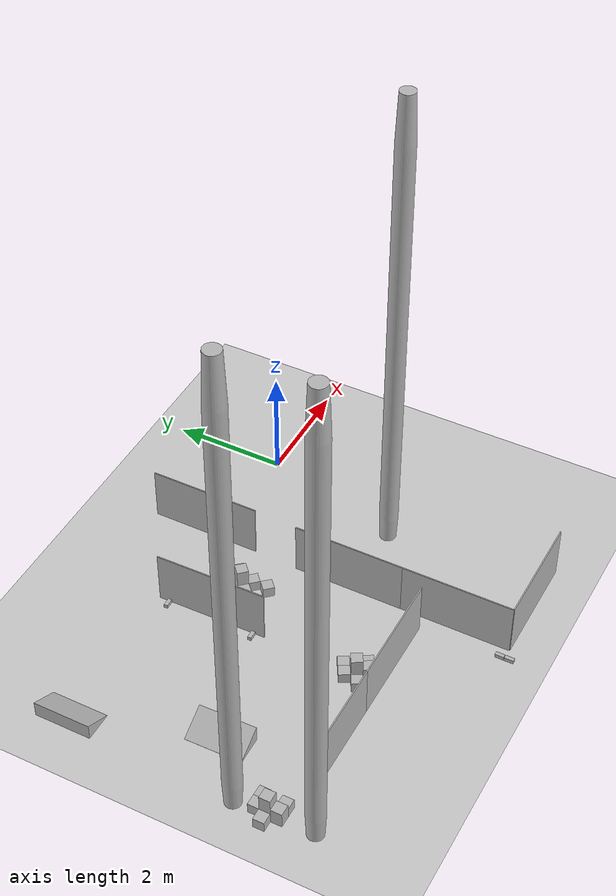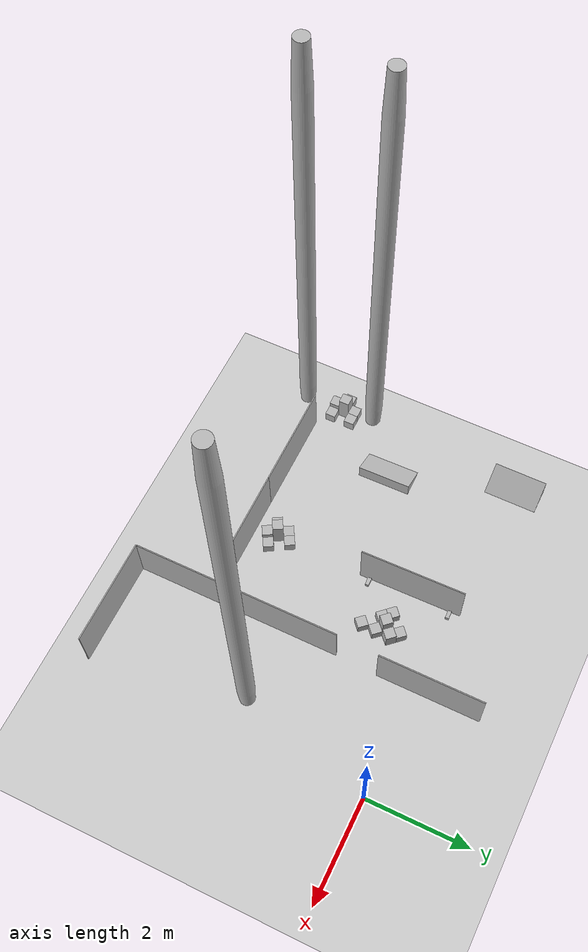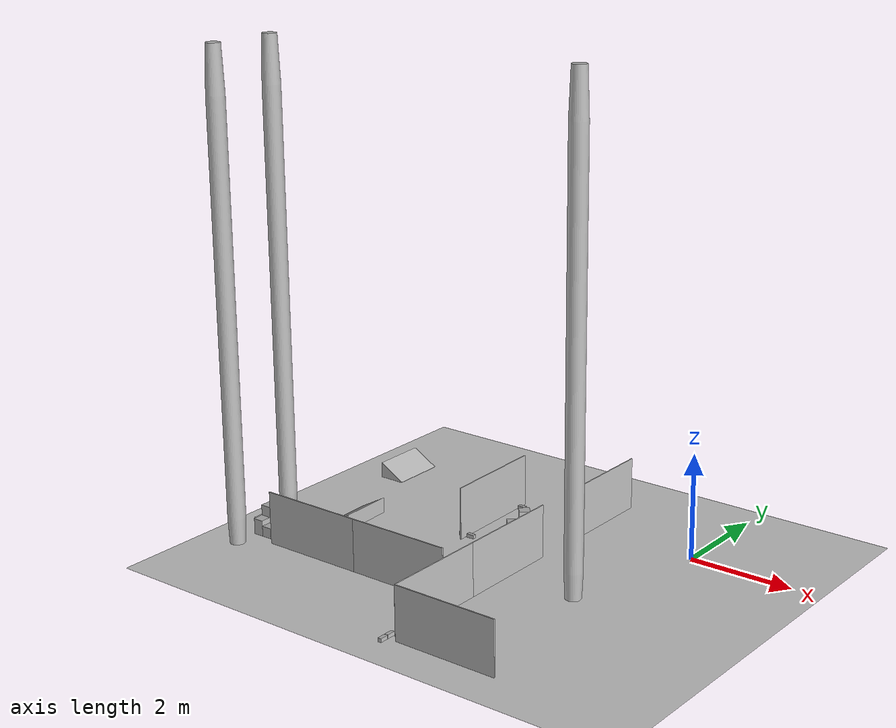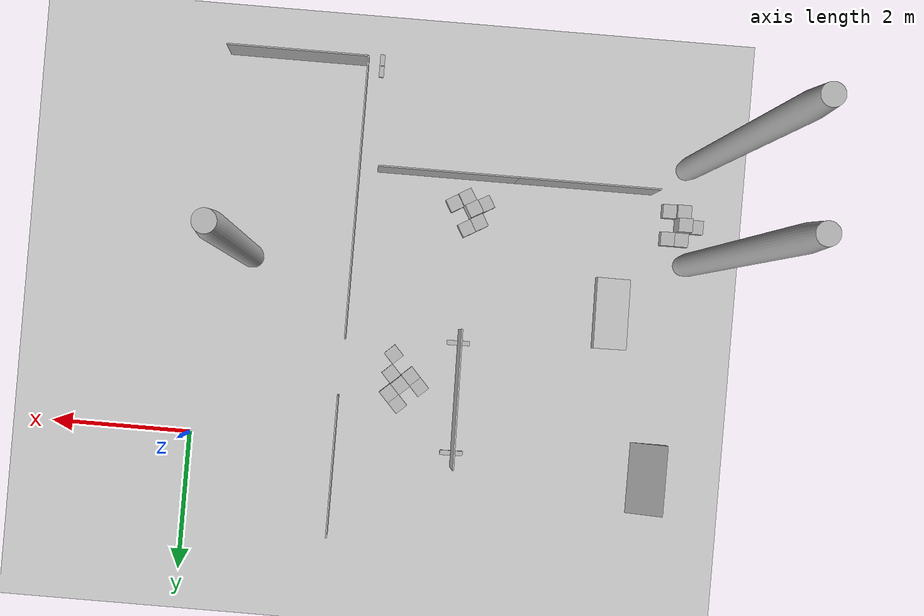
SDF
<sdf version="1.4">
 <world name="default">
  <include><uri>model://ground_plane</uri></include>
  <include><uri>model://sun</uri></include>
  <include><uri>model://ground_plane</uri></include>
  <include>
   <name>barrel_110l.064</name>
   <pose>-6.941155910491943 -2.995645046234131 0.0  0.0 0.0 0.0</pose>
   <uri>model://barrel_110l</uri>
  </include>
  <include>
   <name>barrel_110l.068</name>
   <pose>-6.876338481903076 -4.385210990905762 0.0  0.0 0.0 0.0</pose>
   <uri>model://barrel_110l</uri>
  </include>
  <include>
   <name>barrel_110l.071</name>
   <pose>-0.7261247634887695 -2.6033458709716797 0.0  0.0 0.0 0.0</pose>
   <uri>model://barrel_110l</uri>
  </include>
  <include>
   <name>cube_20x20.1085</name>
   <pose>-6.874878406524658 -3.3630831241607666 0.10000000149011612  0.0 -0.0 3.141592502593994</pose>
   <uri>model://cube_20x20</uri>
  </include>
  <include>
   <name>cube_20x20.1086</name>
   <pose>-7.074878215789795 -3.5630829334259033 0.10000000149011612  0.0 -0.0 3.141592502593994</pose>
   <uri>model://cube_20x20</uri>
  </include>
  <include>
   <name>cube_20x20.1087</name>
   <pose>-6.674878120422363 -3.3630831241607666 0.10000000149011612  0.0 -0.0 3.141592502593994</pose>
   <uri>model://cube_20x20</uri>
  </include>
  <include>
   <name>cube_20x20.1088</name>
   <pose>-6.674878120422363 -3.76308274269104 0.10000000149011612  0.0 -0.0 3.141592502593994</pose>
   <uri>model://cube_20x20</uri>
  </include>
  <include>
   <name>cube_20x20.1089</name>
   <pose>-6.874878406524658 -3.3630831241607666 0.10000000149011612  0.0 -0.0 3.141592502593994</pose>
   <uri>model://cube_20x20</uri>
  </include>
  <include>
   <name>cube_20x20.1090</name>
   <pose>-7.074878215789795 -3.5630829334259033 0.10000000149011612  0.0 -0.0 3.141592502593994</pose>
   <uri>model://cube_20x20</uri>
  </include>
  <include>
   <name>cube_20x20.1091</name>
   <pose>-6.674878120422363 -3.3630831241607666 0.10000000149011612  0.0 -0.0 3.141592502593994</pose>
   <uri>model://cube_20x20</uri>
  </include>
  <include>
   <name>cube_20x20.1092</name>
   <pose>-6.674878120422363 -3.76308274269104 0.10000000149011612  0.0 -0.0 3.141592502593994</pose>
   <uri>model://cube_20x20</uri>
  </include>
  <include>
   <name>cube_20x20.1093</name>
   <pose>-3.9385533332824707 -3.3717634677886963 0.10000000149011612  0.0 -0.0 3.6651763916015625</pose>
   <uri>model://cube_20x20</uri>
  </include>
  <include>
   <name>cube_20x20.1094</name>
   <pose>-4.011762619018555 -3.6449673175811768 0.10000000149011612  0.0 -0.0 3.6651763916015625</pose>
   <uri>model://cube_20x20</uri>
  </include>
  <include>
   <name>cube_20x20.1095</name>
   <pose>-3.7653465270996094 -3.271765947341919 0.10000000149011612  0.0 -0.0 3.6651763916015625</pose>
   <uri>model://cube_20x20</uri>
  </include>
  <include>
   <name>cube_20x20.1096</name>
   <pose>-3.565351963043213 -3.6181790828704834 0.10000000149011612  0.0 -0.0 3.6651763916015625</pose>
   <uri>model://cube_20x20</uri>
  </include>
  <include>
   <name>cube_20x20.1097</name>
   <pose>-3.9385533332824707 -3.3717634677886963 0.10000000149011612  0.0 -0.0 3.6651763916015625</pose>
   <uri>model://cube_20x20</uri>
  </include>
  <include>
   <name>cube_20x20.1098</name>
   <pose>-4.011762619018555 -3.6449673175811768 0.10000000149011612  0.0 -0.0 3.6651763916015625</pose>
   <uri>model://cube_20x20</uri>
  </include>
  <include>
   <name>cube_20x20.1099</name>
   <pose>-3.7653465270996094 -3.271765947341919 0.10000000149011612  0.0 -0.0 3.6651763916015625</pose>
   <uri>model://cube_20x20</uri>
  </include>
  <include>
   <name>cube_20x20.1100</name>
   <pose>-3.565351963043213 -3.6181790828704834 0.10000000149011612  0.0 -0.0 3.6651763916015625</pose>
   <uri>model://cube_20x20</uri>
  </include>
  <include>
   <name>cube_20x20.1101</name>
   <pose>-3.1368727684020996 -1.071094274520874 0.10000000149011612  0.0 0.0 5.4528021812438965</pose>
   <uri>model://cube_20x20</uri>
  </include>
  <include>
   <name>cube_20x20.1102</name>
   <pose>-2.8543167114257812 -1.0838134288787842 0.10000000149011612  0.0 0.0 5.4528021812438965</pose>
   <uri>model://cube_20x20</uri>
  </include>
  <include>
   <name>cube_20x20.1103</name>
   <pose>-2.8670363426208496 -1.3663697242736816 0.10000000149011612  0.0 0.0 5.4528021812438965</pose>
   <uri>model://cube_20x20</uri>
  </include>
  <include>
   <name>cube_20x20.1104</name>
   <pose>-3.2717912197113037 -0.9234559535980225 0.10000000149011612  0.0 0.0 5.4528021812438965</pose>
   <uri>model://cube_20x20</uri>
  </include>
  <include>
   <name>cube_20x20.1105</name>
   <pose>-2.976515293121338 -0.6536192893981934 0.10000000149011612  0.0 0.0 5.4528021812438965</pose>
   <uri>model://cube_20x20</uri>
  </include>
  <include>
   <name>cube_20x20.1106</name>
   <pose>-3.1368727684020996 -1.071094274520874 0.10000000149011612  0.0 0.0 5.4528021812438965</pose>
   <uri>model://cube_20x20</uri>
  </include>
  <include>
   <name>cube_20x20.1107</name>
   <pose>-2.8543167114257812 -1.0838134288787842 0.10000000149011612  0.0 0.0 5.4528021812438965</pose>
   <uri>model://cube_20x20</uri>
  </include>
  <include>
   <name>cube_20x20.1108</name>
   <pose>-2.8670363426208496 -1.3663697242736816 0.10000000149011612  0.0 0.0 5.4528021812438965</pose>
   <uri>model://cube_20x20</uri>
  </include>
  <include>
   <name>cube_20x20.1109</name>
   <pose>-3.2717912197113037 -0.9234559535980225 0.10000000149011612  0.0 0.0 5.4528021812438965</pose>
   <uri>model://cube_20x20</uri>
  </include>
  <include>
   <name>cube_20x20.1110</name>
   <pose>-2.976515293121338 -0.6536192893981934 0.10000000149011612  0.0 0.0 5.4528021812438965</pose>
   <uri>model://cube_20x20</uri>
  </include>
  <include>
   <name>cube_20x30.186</name>
   <pose>-6.874878406524658 -3.76308274269104 0.15000000596046448  0.0 -0.0 3.141592502593994</pose>
   <uri>model://cube_20x30</uri>
  </include>
  <include>
   <name>cube_20x30.187</name>
   <pose>-6.874878406524658 -3.76308274269104 0.15000000596046448  0.0 -0.0 3.141592502593994</pose>
   <uri>model://cube_20x30</uri>
  </include>
  <include>
   <name>cube_20x30.188</name>
   <pose>-3.738558769226074 -3.7181766033172607 0.15000000596046448  0.0 -0.0 3.6651763916015625</pose>
   <uri>model://cube_20x30</uri>
  </include>
  <include>
   <name>cube_20x30.189</name>
   <pose>-3.738558769226074 -3.7181766033172607 0.15000000596046448  0.0 -0.0 3.6651763916015625</pose>
   <uri>model://cube_20x30</uri>
  </include>
  <include>
   <name>cube_20x30.190</name>
   <pose>-2.841596841812134 -0.8012573719024658 0.15000000596046448  0.0 0.0 5.4528021812438965</pose>
   <uri>model://cube_20x30</uri>
  </include>
  <include>
   <name>cube_20x30.191</name>
   <pose>-2.841596841812134 -0.8012573719024658 0.15000000596046448  0.0 0.0 5.4528021812438965</pose>
   <uri>model://cube_20x30</uri>
  </include>
  <include>
   <name>cube_20x50.180</name>
   <pose>-6.874878406524658 -3.5630829334259033 0.25  0.0 -0.0 3.141592502593994</pose>
   <uri>model://cube_20x50</uri>
  </include>
  <include>
   <name>cube_20x50.181</name>
   <pose>-6.874878406524658 -3.5630829334259033 0.25  0.0 -0.0 3.141592502593994</pose>
   <uri>model://cube_20x50</uri>
  </include>
  <include>
   <name>cube_20x50.182</name>
   <pose>-3.8385560512542725 -3.5449702739715576 0.25  0.0 -0.0 3.6651763916015625</pose>
   <uri>model://cube_20x50</uri>
  </include>
  <include>
   <name>cube_20x50.183</name>
   <pose>-3.8385560512542725 -3.5449702739715576 0.25  0.0 -0.0 3.6651763916015625</pose>
   <uri>model://cube_20x50</uri>
  </include>
  <include>
   <name>cube_20x50.184</name>
   <pose>-2.989234209060669 -0.9361758232116699 0.25  0.0 0.0 5.4528021812438965</pose>
   <uri>model://cube_20x50</uri>
  </include>
  <include>
   <name>cube_20x50.185</name>
   <pose>-2.989234209060669 -0.9361758232116699 0.25  0.0 0.0 5.4528021812438965</pose>
   <uri>model://cube_20x50</uri>
  </include>
  <include>
   <name>ramp.080</name>
   <pose>-5.96612548828125 -2.2167935371398926 0.15000000596046448  0.0 -0.0 9.44315242767334</pose>
   <uri>model://ramp</uri>
  </include>
  <include>
   <name>ramp.081</name>
   <pose>-6.66489315032959 0.13354206085205078 0.15000000596046448  0.0 -0.0 6.283185005187988</pose>
   <uri>model://ramp</uri>
  </include>
  <include>
   <name>wall_2x1.415</name>
   <pose>-3.801290512084961 -0.8092706203460693 0.5130000114440918  0.0 -0.0 4.7307634353637695</pose>
   <uri>model://wall_2x1</uri>
  </include>
  <include>
   <name>wall_2x1.419</name>
   <pose>-2.147331953048706 -2.5302858352661133 0.5130000114440918  0.0 -0.0 1.570796251296997</pose>
   <uri>model://wall_2x1</uri>
  </include>
  <include>
   <name>wall_2x1.420</name>
   <pose>-1.1473321914672852 -5.530285835266113 0.5130000114440918  0.0 -0.0 3.141592502593994</pose>
   <uri>model://wall_2x1</uri>
  </include>
  <include>
   <name>wall_2x1.421</name>
   <pose>-2.147332191467285 -4.530285835266113 0.5130000114440918  0.0 -0.0 1.570796251296997</pose>
   <uri>model://wall_2x1</uri>
  </include>
  <include>
   <name>wall_2x1.426</name>
   <pose>-2.1166141033172607 0.2739219665527344 0.5130000114440918  0.0 -0.0 4.71238899230957</pose>
   <uri>model://wall_2x1</uri>
  </include>
  <include>
   <name>wall_stand.940</name>
   <pose>-3.7865824699401855 -1.609635353088379 0.03450000286102295  0.0 -0.0 3.1599674224853516</pose>
   <uri>model://wall_stand</uri>
  </include>
  <include>
   <name>wall_stand.941</name>
   <pose>-3.815998077392578 -0.008905649185180664 0.03450000286102295  0.0 -0.0 3.1599674224853516</pose>
   <uri>model://wall_stand</uri>
  </include>
  <include>
   <name>wall_stand.944</name>
   <pose>-2.346832275390625 -5.530285835266113 0.03450000286102295  0.0 -0.0 1.570796251296997</pose>
   <uri>model://wall_stand</uri>
  </include>
  <include>
   <name>wall_2x1.432</name>
   <pose>-5.410947799682617 -4.0 0.5130000114440918  0.0 0.0 0.0</pose>
   <uri>model://wall_2x1</uri>
  </include>
  <include>
   <name>wall_2x1.433</name>
   <pose>-3.410947799682617 -4.0 0.5130000114440918  0.0 0.0 0.0</pose>
   <uri>model://wall_2x1</uri>
  </include>
 </world>
</sdf>
